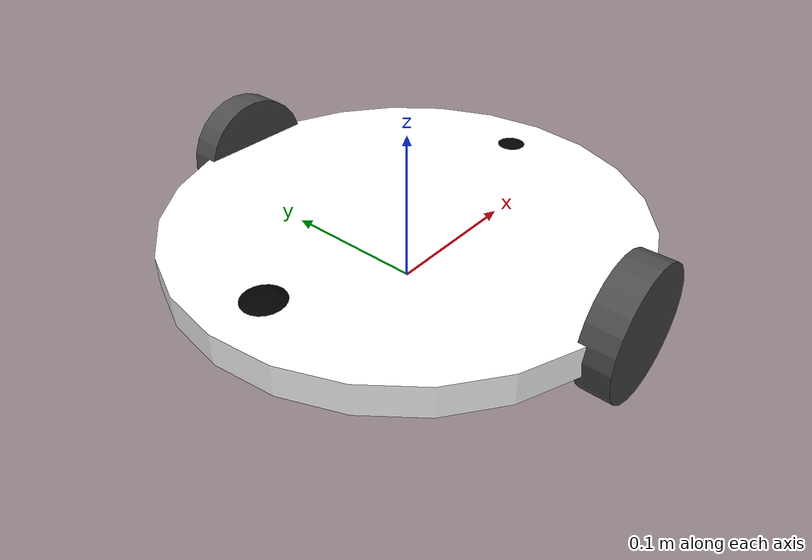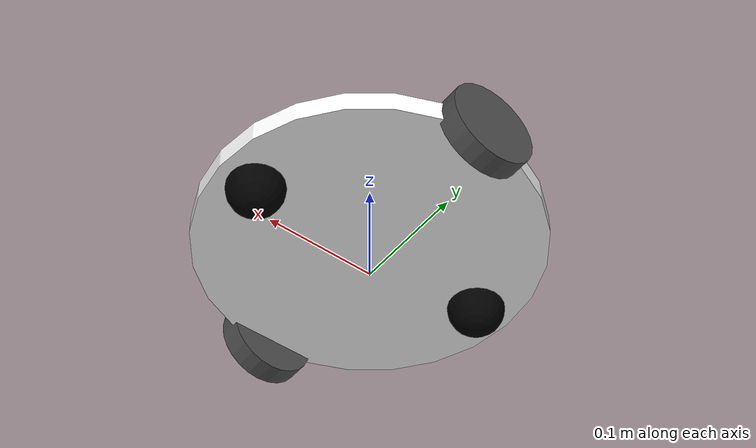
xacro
<?xml version="1.0"?>
<robot name="differential_wheeled_robot" xmlns:xacro="http://ros.org/wiki/xacro">

  <xacro:include filename="$(find diff_robot)/urdf/wheel.urdf.xacro" />

<!-- Defining the colors used in this robot -->
  <material name="Black">
    <color rgba="0.0 0.0 0.0 1.0"/>
  </material>

  <material name="Red">
    <color rgba="0.8 0.0 0.0 1.0"/>
  </material>

  <material name="White">
    <color rgba="1.0 1.0 1.0 1.0"/>
  </material>

  <material name="Blue">
    <color rgba="0.0 0.0 0.8 1.0"/>
  </material>

  <!-- PROPERTY LIST -->
  <!--All units in m-kg-s-radians unit system -->
  <xacro:property name="M_PI" value="3.1415926535897931" />
  <xacro:property name="M_PI_2" value="1.570796327" />
  <xacro:property name="DEG_TO_RAD" value="0.017453293" />

  <!-- Main body radius and height -->
  <!-- Main Body Cylinder base   -->
  <xacro:property name="base_height" value="0.02" />
  <xacro:property name="base_radius" value="0.15" />
  <xacro:property name="base_mass" value="5" /> <!-- in kg-->

  <!-- caster wheel radius and height -->
  <!-- caster wheel mass -->
  <xacro:property name="caster_f_height" value="0.04" />
  <xacro:property name="caster_f_radius" value="0.025" />
  <xacro:property name="caster_f_mass" value="0.5" /> <!-- in kg-->

  <!-- caster wheel radius and height -->
  <!-- caster wheel mass -->
  <xacro:property name="caster_b_height" value="0.04" />
  <xacro:property name="caster_b_radius" value="0.025" />
  <xacro:property name="caster_b_mass" value="0.5" /> <!-- in kg-->

  <!-- Wheels -->

  <xacro:property name="wheel_mass" value="2.5" /> --> <!-- in kg-->

  <xacro:property name="base_x_origin_to_wheel_origin" value="0.25" />
  <xacro:property name="base_y_origin_to_wheel_origin" value="0.3" />
  <xacro:property name="base_z_origin_to_wheel_origin" value="0.0" />

  <!-- Hokuyo Laser scanner -->
  <xacro:property name="hokuyo_size" value="0.05" />

  <!-- Macro for calculating inertia of cylinder -->
  <xacro:macro name="cylinder_inertia" params="m r h">
    <inertia  ixx="${m*(3*r*r+h*h)/12}" ixy = "0" ixz = "0"
              iyy="${m*(3*r*r+h*h)/12}" iyz = "0"
              izz="${m*r*r/2}" />
  </xacro:macro>

  <!-- BASE-FOOTPRINT -->
  <!-- base_footprint is a fictitious link(frame) that is on the ground right below base_link origin -->
  <link name="dummy0">
   </link>
  <link name="base_footprint">
    <inertial>
      <mass value="0.0001" />
      <origin xyz="0 0 0" />
      <inertia ixx="0.0001" ixy="0.0" ixz="0.0"
          iyy="0.0001" iyz="0.0"
          izz="0.0001" />
    </inertial>
    <visual>
        <origin xyz="0 0 0" rpy="0 0 0" />
        <geometry>
            <box size="0.001 0.001 0.001" />
        </geometry>
    </visual>
  </link>
  <joint name="dummy_joint0" type="fixed">
     <parent link="dummy0"/>
     <child link="base_footprint"/>
  </joint>
  <gazebo reference="base_footprint">
    <turnGravityOff>false</turnGravityOff>
  </gazebo>
  <link name="dummy">
   </link>
  <joint name="base_footprint_joint" type="fixed">
    <origin xyz="0 0 ${wheel_radius - base_z_origin_to_wheel_origin}" rpy="0 0 0" />
    <parent link="base_footprint"/>
    <child link="dummy" />
  </joint>

  <!-- BASE-LINK -->
  <!--Actual body/chassis of the robot-->
  <link name="base_link">
    <inertial>
      <mass value="${base_mass}" />
      <origin xyz="0 0 0" />
      <!--The 3x3 rotational inertia matrix. -->
      <xacro:cylinder_inertia  m="${base_mass}" r="${base_radius}" h="${base_height}" />

    </inertial>
    <visual>
      <origin xyz="0 0 0" rpy="0 0 0" />
      <geometry>

          <cylinder length="${base_height}" radius="${base_radius}" />

      </geometry>
      <material name="White" />
    </visual>
    <collision>
      <origin xyz="0 0 0" rpy="0 0 0 " />
      <geometry>

          <cylinder length="${base_height}" radius="${base_radius}" />

      </geometry>
    </collision>
  </link>
  <joint name="dummy_joint" type="fixed">
     <parent link="dummy"/>
     <child link="base_link"/>
  </joint>
  <gazebo reference="base_link">
    <material>Gazebo/White</material>
    <turnGravityOff>false</turnGravityOff>
  </gazebo>

<!--Caster front  -->

    <link name="caster_front_link">

    <visual>
      <origin xyz="0 0.02 0" rpy="${M_PI/2} 0 0" />
      <geometry>
	<sphere radius="${caster_f_radius}" />
      </geometry>
      <material name="Black" />
    </visual>

      <collision>
        <geometry>

	<sphere radius="${caster_f_radius}" />

        </geometry>
      <origin xyz="0 0.02 0" rpy="${M_PI/2} 0 0" />
      </collision>
      <inertial>
        <mass value="${caster_f_mass}" />
        <origin xyz="0 0 0" />
        <inertia ixx="0.001" ixy="0.0" ixz="0.0"
                 iyy="0.001" iyz="0.0"
                 izz="0.001" />
      </inertial>
    </link>

 <joint name="caster_front_joint" type="fixed">
      <parent link="base_link"/>
      <child link="caster_front_link"/>
      <origin xyz="0.115 0.0 0.007" rpy="${-M_PI/2} 0 0"/>
    </joint>

  <gazebo reference="caster_front_link">
    <turnGravityOff>false</turnGravityOff>
  </gazebo>

<!--Caster back  -->

    <link name="caster_back_link">

    <visual>
      <origin xyz="0.02 0.02 0 " rpy="${M_PI/2} 0 0" />

      <geometry>

	<sphere radius="${caster_b_radius}" />

      </geometry>
      <material name="Black" />
    </visual>

      <collision>
        <geometry>
		<sphere radius="${caster_b_radius}" />
        </geometry>
      <origin xyz="0 0.02 0 " rpy="${M_PI/2} 0 0" />
      </collision>
      <inertial>
        <mass value="${caster_b_mass}" />
        <origin xyz="0 0 0" />
        <inertia ixx="0.001" ixy="0.0" ixz="0.0"
                 iyy="0.001" iyz="0.0"
                 izz="0.001" />
      </inertial>
    </link>

    <joint name="caster_back_joint" type="fixed">
      <parent link="base_link"/>
      <child link="caster_back_link"/>
      <origin xyz="-0.135 0.0 0.009" rpy="${-M_PI/2} 0 0"/>
    </joint>

  <gazebo reference="caster_back_link">
    <turnGravityOff>false</turnGravityOff>
  </gazebo>

  <xacro:wheels fb="front" lr="left" parent="base_link" translateX="0" translateY="0.5" flipY="1"/>
  <xacro:wheels fb="front" lr="right" parent="base_link" translateX="0" translateY="-0.5" flipY="1"/>

  <!-- Differential drive controller  -->
  <gazebo>
    <plugin name="differential_drive_controller" filename="libgazebo_ros_diff_drive.so">
      <legacyMode>true</legacyMode>
      <rosDebugLevel>Debug</rosDebugLevel>
      <publishWheelTF>false</publishWheelTF>
      <robotNamespace>/</robotNamespace>
      <publishTf>1</publishTf>
      <publishWheelJointState>false</publishWheelJointState>
      <alwaysOn>true</alwaysOn>
      <updateRate>100.0</updateRate>
      <leftJoint>front_left_wheel_joint</leftJoint>
      <rightJoint>front_right_wheel_joint</rightJoint>
      <wheelSeparation>${2*base_radius}</wheelSeparation>
      <wheelDiameter>${2*wheel_radius}</wheelDiameter>
      <broadcastTF>1</broadcastTF>
      <wheelTorque>30</wheelTorque>
      <wheelAcceleration>1.8</wheelAcceleration>
      <commandTopic>cmd_vel</commandTopic>
      <odometryFrame>odom</odometryFrame>
      <odometryTopic>odom</odometryTopic>
      <robotBaseFrame>base_footprint</robotBaseFrame>

    </plugin>
  </gazebo>

</robot>

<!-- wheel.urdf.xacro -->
<robot name="wheel" xmlns:xacro="http://www.ros.org/wiki/xacro">

  <!-- Wheels -->
  <xacro:property name="wheel_radius" value="0.04" />
  <xacro:property name="wheel_height" value="0.02" />
  <xacro:property name="wheel_mass" value="2.5" /> <!-- in kg-->

  <xacro:property name="base_x_origin_to_wheel_origin" value="0.25" />
  <xacro:property name="base_y_origin_to_wheel_origin" value="0.3" />
  <xacro:property name="base_z_origin_to_wheel_origin" value="0.0" />

  <xacro:macro name="cylinder_inertia" params="m r h">
    <inertia  ixx="${m*(3*r*r+h*h)/12}" ixy = "0" ixz = "0"
              iyy="${m*(3*r*r+h*h)/12}" iyz = "0"
              izz="${m*r*r/2}" />
  </xacro:macro>

  <xacro:macro name="wheels" params="fb lr parent translateX translateY flipY"> <!--fb : front, back ; lr: left, right -->
    <link name="${fb}_${lr}_wheel">
      <visual>
        <origin xyz="0 0 0" rpy="${flipY*M_PI/2} 0  0 " />
        <geometry>
          <cylinder length="${wheel_height}" radius="${wheel_radius}" />
        </geometry>
        <material name="DarkGray" />
      </visual>
      <collision>
        <origin xyz="0 0 0" rpy="${flipY*M_PI/2} 0 0 " />
        <geometry>
          <cylinder length="${wheel_height}" radius="${wheel_radius}" />
        </geometry>
      </collision>
      <inertial>
        <mass value="${wheel_mass}" />
        <origin xyz="0 0 0" />
        <xacro:cylinder_inertia  m="${wheel_mass}" r="${wheel_radius}" h="${wheel_height}" />
      </inertial>
    </link>

    <gazebo reference="${fb}_${lr}_wheel">
      <mu1 value="1.0"/>
      <mu2 value="1.0"/>
      <kp  value="10000000.0" />
      <kd  value="1.0" />
      <fdir1 value="1 0 0"/>
      <material>Gazebo/Grey</material>
      <turnGravityOff>false</turnGravityOff>
    </gazebo>

    <joint name="${fb}_${lr}_wheel_joint" type="continuous">
      <parent link="${parent}"/>
      <child link="${fb}_${lr}_wheel"/>
      <origin xyz="${translateX * base_x_origin_to_wheel_origin} ${translateY * base_y_origin_to_wheel_origin} ${base_z_origin_to_wheel_origin}" rpy="0 0 0" />
      <axis xyz="0 1 0" rpy="0  0" />
      <limit effort="100" velocity="100"/>
      <joint_properties damping="0.0" friction="0.0"/>
    </joint>

    <!-- Transmission is important to link the joints and the controller -->
    <transmission name="${fb}_${lr}_wheel_joint_trans">
      <type>transmission_interface/SimpleTransmission</type>
      <joint name="${fb}_${lr}_wheel_joint" />
      <actuator name="${fb}_${lr}_wheel_joint_motor">
        <hardwareInterface>EffortJointInterface</hardwareInterface>
        <mechanicalReduction>1</mechanicalReduction>
      </actuator>
    </transmission>

  </xacro:macro>
</robot>
